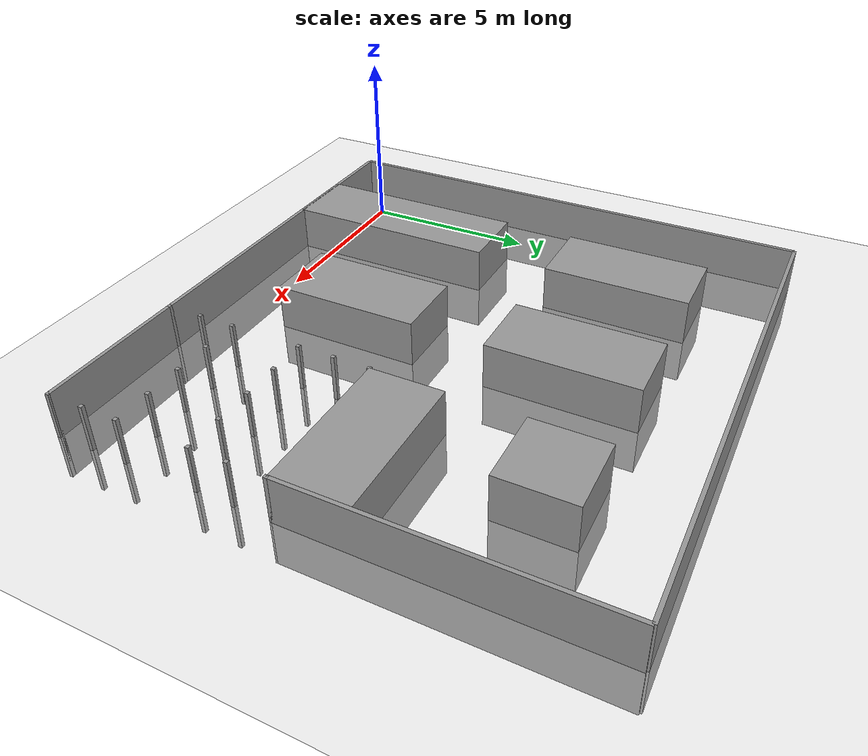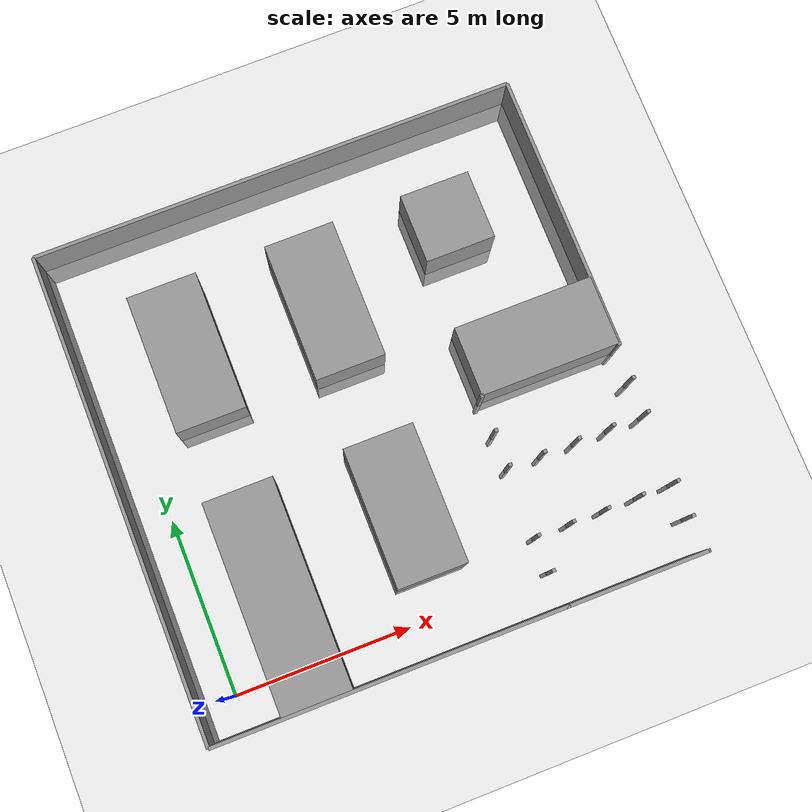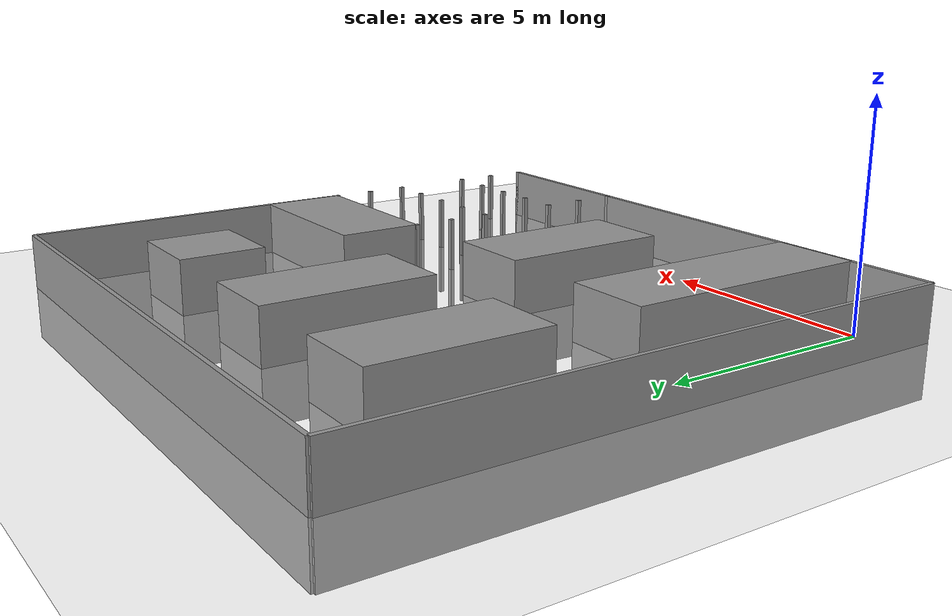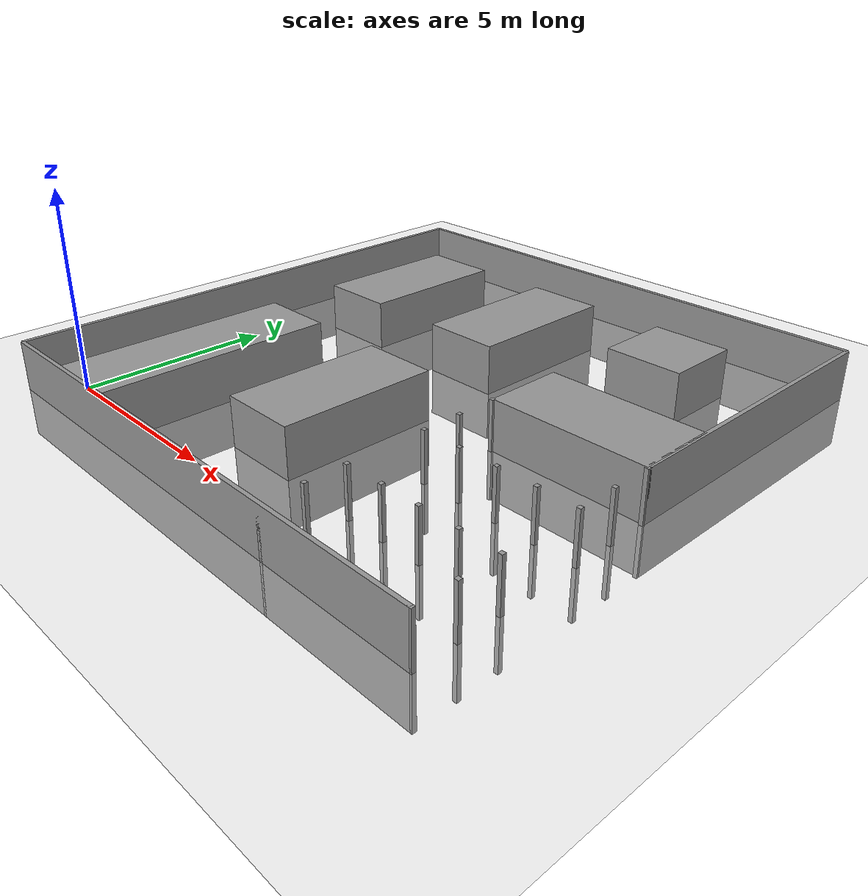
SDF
<?xml version="1.0" ?>
<sdf version="1.5">
  <world name="default">
    <gui>
      <camera name="user_camera">
        <pose>6 6 25 0 1.57079632679 1.57079632679</pose>
      </camera>
    </gui>
    <include>
      <uri>model://ground_plane</uri>
    </include>
    <include>
      <uri>model://sun</uri>
    </include>
    <include>
      <uri>model://RFMaze.v2</uri>
    </include>
  </world>
</sdf>

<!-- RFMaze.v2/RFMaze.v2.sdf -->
<sdf version='1.6'>
  <model name='RFMaze'>

    <link name='Wall_0'>
      <collision name='col'>
        <geometry>
          <box>
            <size>14 0.1 2.5</size>
          </box>
        </geometry>
      </collision>
      <visual name='vis'>
        <geometry>
          <box>
            <size>14 0.1 2.5</size>
          </box>
        </geometry>
        <material>
          <script>
            <uri>file://media/materials/scripts/gazebo.material</uri>
            <name>Gazebo/Grey</name>
          </script>
          <ambient>1 1 1 1</ambient>
        </material>
      </visual>
      <pose>7 0 0 0 0 0</pose>
    </link>
    <link name='Wall_1'>
      <collision name='col'>
        <geometry>
          <box>
            <size>14 0.1 2.5</size>
          </box>
        </geometry>
      </collision>
      <visual name='vis'>
        <geometry>
          <box>
            <size>14 0.1 2.5</size>
          </box>
        </geometry>
        <material>
          <script>
            <uri>file://media/materials/scripts/gazebo.material</uri>
            <name>Gazebo/Grey</name>
          </script>
          <ambient>1 1 1 1</ambient>
        </material>
      </visual>
      <pose>0 7 0 0 0 1.57079632679</pose>
    </link>
    <link name='Wall_2'>
      <collision name='col'>
        <geometry>
          <box>
            <size>14 0.1 2.5</size>
          </box>
        </geometry>
      </collision>
      <visual name='vis'>
        <geometry>
          <box>
            <size>14 0.1 2.5</size>
          </box>
        </geometry>
        <material>
          <script>
            <uri>file://media/materials/scripts/gazebo.material</uri>
            <name>Gazebo/Grey</name>
          </script>
          <ambient>1 1 1 1</ambient>
        </material>
      </visual>
      <pose>7 14 0 0 0 0</pose>
    </link>

    <link name='Wall_3'>
      <collision name='col'>
        <geometry>
          <box>
            <size>8 0.1 2.5</size>
          </box>
        </geometry>
      </collision>
      <visual name='vis'>
        <geometry>
          <box>
            <size>8 0.1 2.5</size>
          </box>
        </geometry>
        <material>
          <script>
            <uri>file://media/materials/scripts/gazebo.material</uri>
            <name>Gazebo/Grey</name>
          </script>
          <ambient>1 1 1 1</ambient>
        </material>
      </visual>
      <pose>14 10 0 0 0 1.57079632679</pose>
    </link>
    <link name='BoxH_0'>
      <collision name='col'>
        <geometry>
          <box>
            <size>4 2 2.5</size>
          </box>
        </geometry>
      </collision>
      <visual name='vis'>
        <geometry>
          <box>
            <size>4 2 2.5</size>
          </box>
        </geometry>
        <material>
          <script>
            <uri>file://media/materials/scripts/gazebo.material</uri>
            <name>Gazebo/Grey</name>
          </script>
          <ambient>1 1 1 1</ambient>
        </material>
      </visual>
      <pose>12 7 0 0 0 0</pose>
    </link>
    <link name='BoxV_1'>
      <collision name='col'>
        <geometry>
          <box>
            <size>2 6 2.5</size>
          </box>
        </geometry>
      </collision>
      <visual name='vis'>
        <geometry>
          <box>
            <size>2 6 2.5</size>
          </box>
        </geometry>
        <material>
          <script>
            <uri>file://media/materials/scripts/gazebo.material</uri>
            <name>Gazebo/Grey</name>
          </script>
          <ambient>1 1 1 1</ambient>
        </material>
      </visual>
      <pose>3 3 0 0 0 0</pose>
    </link>
    <link name='BoxV_2'>
      <collision name='col'>
        <geometry>
          <box>
            <size>2 4 2.5</size>
          </box>
        </geometry>
      </collision>
      <visual name='vis'>
        <geometry>
          <box>
            <size>2 4 2.5</size>
          </box>
        </geometry>
        <material>
          <script>
            <uri>file://media/materials/scripts/gazebo.material</uri>
            <name>Gazebo/Grey</name>
          </script>
          <ambient>1 1 1 1</ambient>
        </material>
      </visual>
      <pose>7 4 0 0 0 0</pose>
    </link>
    <link name='BoxV_3'>
      <collision name='col'>
        <geometry>
          <box>
            <size>2 4 2.5</size>
          </box>
        </geometry>
      </collision>
      <visual name='vis'>
        <geometry>
          <box>
            <size>2 4 2.5</size>
          </box>
        </geometry>
        <material>
          <script>
            <uri>file://media/materials/scripts/gazebo.material</uri>
            <name>Gazebo/Grey</name>
          </script>
          <ambient>1 1 1 1</ambient>
        </material>
      </visual>
      <pose>7 10 0 0 0 0</pose>
    </link>
    <link name='BoxV_4'>
      <collision name='col'>
        <geometry>
          <box>
            <size>2 4 2.5</size>
          </box>
        </geometry>
      </collision>
      <visual name='vis'>
        <geometry>
          <box>
            <size>2 4 2.5</size>
          </box>
        </geometry>
        <material>
          <script>
            <uri>file://media/materials/scripts/gazebo.material</uri>
            <name>Gazebo/Grey</name>
          </script>
          <ambient>1 1 1 1</ambient>
        </material>
      </visual>
      <pose>3 10 0 0 0 0</pose>
    </link>
    <link name='Box_4'>
      <collision name='col'>
        <geometry>
          <box>
            <size>2 2 2.5</size>
          </box>
        </geometry>
      </collision>
      <visual name='vis'>
        <geometry>
          <box>
            <size>2 2 2.5</size>
          </box>
        </geometry>
        <material>
          <script>
            <uri>file://media/materials/scripts/gazebo.material</uri>
            <name>Gazebo/Grey</name>
          </script>
          <ambient>1 1 1 1</ambient>
        </material>
      </visual>
      <pose>11 11 0 0 0 0</pose>
    </link>
    <link name='Column_0'>
      <collision name='col'>
        <geometry>
          <box>
            <size>0.1 0.1 2.5</size>
          </box>
        </geometry>
      </collision>
      <visual name='vis'>
        <geometry>
          <box>
            <size>0.1 0.1 2.5</size>
          </box>
        </geometry>
        <material>
          <script>
            <uri>file://media/materials/scripts/gazebo.material</uri>
            <name>Gazebo/Grey</name>
          </script>
          <ambient>1 1 1 1</ambient>
        </material>
      </visual>
      <pose>10 0 0 0 0 0</pose>
    </link>
    <link name='Column_1'>
      <collision name='col'>
        <geometry>
          <box>
            <size>0.1 0.1 2.5</size>
          </box>
        </geometry>
      </collision>
      <visual name='vis'>
        <geometry>
          <box>
            <size>0.1 0.1 2.5</size>
          </box>
        </geometry>
        <material>
          <script>
            <uri>file://media/materials/scripts/gazebo.material</uri>
            <name>Gazebo/Grey</name>
          </script>
          <ambient>1 1 1 1</ambient>
        </material>
      </visual>
      <pose>10 1 0 0 0 0</pose>
    </link>
    <link name='Column_2'>
      <collision name='col'>
        <geometry>
          <box>
            <size>0.1 0.1 2.5</size>
          </box>
        </geometry>
      </collision>
      <visual name='vis'>
        <geometry>
          <box>
            <size>0.1 0.1 2.5</size>
          </box>
        </geometry>
        <material>
          <script>
            <uri>file://media/materials/scripts/gazebo.material</uri>
            <name>Gazebo/Grey</name>
          </script>
          <ambient>1 1 1 1</ambient>
        </material>
      </visual>
      <pose>10 2 0 0 0 0</pose>
    </link>
    <link name='Column_3'>
      <collision name='col'>
        <geometry>
          <box>
            <size>0.1 0.1 2.5</size>
          </box>
        </geometry>
      </collision>
      <visual name='vis'>
        <geometry>
          <box>
            <size>0.1 0.1 2.5</size>
          </box>
        </geometry>
        <material>
          <script>
            <uri>file://media/materials/scripts/gazebo.material</uri>
            <name>Gazebo/Grey</name>
          </script>
          <ambient>1 1 1 1</ambient>
        </material>
      </visual>
      <pose>11 2 0 0 0 0</pose>
    </link>
    <link name='Column_4'>
      <collision name='col'>
        <geometry>
          <box>
            <size>0.1 0.1 2.5</size>
          </box>
        </geometry>
      </collision>
      <visual name='vis'>
        <geometry>
          <box>
            <size>0.1 0.1 2.5</size>
          </box>
        </geometry>
        <material>
          <script>
            <uri>file://media/materials/scripts/gazebo.material</uri>
            <name>Gazebo/Grey</name>
          </script>
          <ambient>1 1 1 1</ambient>
        </material>
      </visual>
      <pose>12 2 0 0 0 0</pose>
    </link>
    <link name='Column_5'>
      <collision name='col'>
        <geometry>
          <box>
            <size>0.1 0.1 2.5</size>
          </box>
        </geometry>
      </collision>
      <visual name='vis'>
        <geometry>
          <box>
            <size>0.1 0.1 2.5</size>
          </box>
        </geometry>
        <material>
          <script>
            <uri>file://media/materials/scripts/gazebo.material</uri>
            <name>Gazebo/Grey</name>
          </script>
          <ambient>1 1 1 1</ambient>
        </material>
      </visual>
      <pose>13 2 0 0 0 0</pose>
    </link>
    <link name='Column_6'>
      <collision name='col'>
        <geometry>
          <box>
            <size>0.1 0.1 2.5</size>
          </box>
        </geometry>
      </collision>
      <visual name='vis'>
        <geometry>
          <box>
            <size>0.1 0.1 2.5</size>
          </box>
        </geometry>
        <material>
          <script>
            <uri>file://media/materials/scripts/gazebo.material</uri>
            <name>Gazebo/Grey</name>
          </script>
          <ambient>1 1 1 1</ambient>
        </material>
      </visual>
      <pose>14 2 0 0 0 0</pose>
    </link>
    <link name='Column_7'>
      <collision name='col'>
        <geometry>
          <box>
            <size>0.1 0.1 2.5</size>
          </box>
        </geometry>
      </collision>
      <visual name='vis'>
        <geometry>
          <box>
            <size>0.1 0.1 2.5</size>
          </box>
        </geometry>
        <material>
          <script>
            <uri>file://media/materials/scripts/gazebo.material</uri>
            <name>Gazebo/Grey</name>
          </script>
          <ambient>1 1 1 1</ambient>
        </material>
      </visual>
      <pose>14 1 0 0 0 0</pose>
    </link>
    <link name='Column_8'>
      <collision name='col'>
        <geometry>
          <box>
            <size>0.1 0.1 2.5</size>
          </box>
        </geometry>
      </collision>
      <visual name='vis'>
        <geometry>
          <box>
            <size>0.1 0.1 2.5</size>
          </box>
        </geometry>
        <material>
          <script>
            <uri>file://media/materials/scripts/gazebo.material</uri>
            <name>Gazebo/Grey</name>
          </script>
          <ambient>1 1 1 1</ambient>
        </material>
      </visual>
      <pose>14 0 0 0 0 0</pose>
    </link>

    <link name='Column_9'>
      <collision name='col'>
        <geometry>
          <box>
            <size>0.1 0.1 2.5</size>
          </box>
        </geometry>
      </collision>
      <visual name='vis'>
        <geometry>
          <box>
            <size>0.1 0.1 2.5</size>
          </box>
        </geometry>
        <material>
          <script>
            <uri>file://media/materials/scripts/gazebo.material</uri>
            <name>Gazebo/Grey</name>
          </script>
          <ambient>1 1 1 1</ambient>
        </material>
      </visual>
      <pose>10 6 0 0 0 0</pose>
    </link>
    <link name='Column_10'>
      <collision name='col'>
        <geometry>
          <box>
            <size>0.1 0.1 2.5</size>
          </box>
        </geometry>
      </collision>
      <visual name='vis'>
        <geometry>
          <box>
            <size>0.1 0.1 2.5</size>
          </box>
        </geometry>
        <material>
          <script>
            <uri>file://media/materials/scripts/gazebo.material</uri>
            <name>Gazebo/Grey</name>
          </script>
          <ambient>1 1 1 1</ambient>
        </material>
      </visual>
      <pose>10 5 0 0 0 0</pose>
    </link>
    <link name='Column_11'>
      <collision name='col'>
        <geometry>
          <box>
            <size>0.1 0.1 2.5</size>
          </box>
        </geometry>
      </collision>
      <visual name='vis'>
        <geometry>
          <box>
            <size>0.1 0.1 2.5</size>
          </box>
        </geometry>
        <material>
          <script>
            <uri>file://media/materials/scripts/gazebo.material</uri>
            <name>Gazebo/Grey</name>
          </script>
          <ambient>1 1 1 1</ambient>
        </material>
      </visual>
      <pose>10 4 0 0 0 0</pose>
    </link>
    <link name='Column_12'>
      <collision name='col'>
        <geometry>
          <box>
            <size>0.1 0.1 2.5</size>
          </box>
        </geometry>
      </collision>
      <visual name='vis'>
        <geometry>
          <box>
            <size>0.1 0.1 2.5</size>
          </box>
        </geometry>
        <material>
          <script>
            <uri>file://media/materials/scripts/gazebo.material</uri>
            <name>Gazebo/Grey</name>
          </script>
          <ambient>1 1 1 1</ambient>
        </material>
      </visual>
      <pose>11 4 0 0 0 0</pose>
    </link>
    <link name='Column_13'>
      <collision name='col'>
        <geometry>
          <box>
            <size>0.1 0.1 2.5</size>
          </box>
        </geometry>
      </collision>
      <visual name='vis'>
        <geometry>
          <box>
            <size>0.1 0.1 2.5</size>
          </box>
        </geometry>
        <material>
          <script>
            <uri>file://media/materials/scripts/gazebo.material</uri>
            <name>Gazebo/Grey</name>
          </script>
          <ambient>1 1 1 1</ambient>
        </material>
      </visual>
      <pose>12 4 0 0 0 0</pose>
    </link>
    <link name='Column_14'>
      <collision name='col'>
        <geometry>
          <box>
            <size>0.1 0.1 2.5</size>
          </box>
        </geometry>
      </collision>
      <visual name='vis'>
        <geometry>
          <box>
            <size>0.1 0.1 2.5</size>
          </box>
        </geometry>
        <material>
          <script>
            <uri>file://media/materials/scripts/gazebo.material</uri>
            <name>Gazebo/Grey</name>
          </script>
          <ambient>1 1 1 1</ambient>
        </material>
      </visual>
      <pose>13 4 0 0 0 0</pose>
    </link>
    <link name='Column_15'>
      <collision name='col'>
        <geometry>
          <box>
            <size>0.1 0.1 2.5</size>
          </box>
        </geometry>
      </collision>
      <visual name='vis'>
        <geometry>
          <box>
            <size>0.1 0.1 2.5</size>
          </box>
        </geometry>
        <material>
          <script>
            <uri>file://media/materials/scripts/gazebo.material</uri>
            <name>Gazebo/Grey</name>
          </script>
          <ambient>1 1 1 1</ambient>
        </material>
      </visual>
      <pose>14 4 0 0 0 0</pose>
    </link>
    <link name='Column_16'>
      <collision name='col'>
        <geometry>
          <box>
            <size>0.1 0.1 2.5</size>
          </box>
        </geometry>
      </collision>
      <visual name='vis'>
        <geometry>
          <box>
            <size>0.1 0.1 2.5</size>
          </box>
        </geometry>
        <material>
          <script>
            <uri>file://media/materials/scripts/gazebo.material</uri>
            <name>Gazebo/Grey</name>
          </script>
          <ambient>1 1 1 1</ambient>
        </material>
      </visual>
      <pose>14 5 0 0 0 0</pose>
    </link>
    <link name='Column_17'>
      <collision name='col'>
        <geometry>
          <box>
            <size>0.1 0.1 2.5</size>
          </box>
        </geometry>
      </collision>
      <visual name='vis'>
        <geometry>
          <box>
            <size>0.1 0.1 2.5</size>
          </box>
        </geometry>
        <material>
          <script>
            <uri>file://media/materials/scripts/gazebo.material</uri>
            <name>Gazebo/Grey</name>
          </script>
          <ambient>1 1 1 1</ambient>
        </material>
      </visual>
      <pose>14 6 0 0 0 0</pose>
    </link>

    <static>1</static>
    <pose>-1 -1 0 0 0 0</pose>
  </model>
</sdf>
